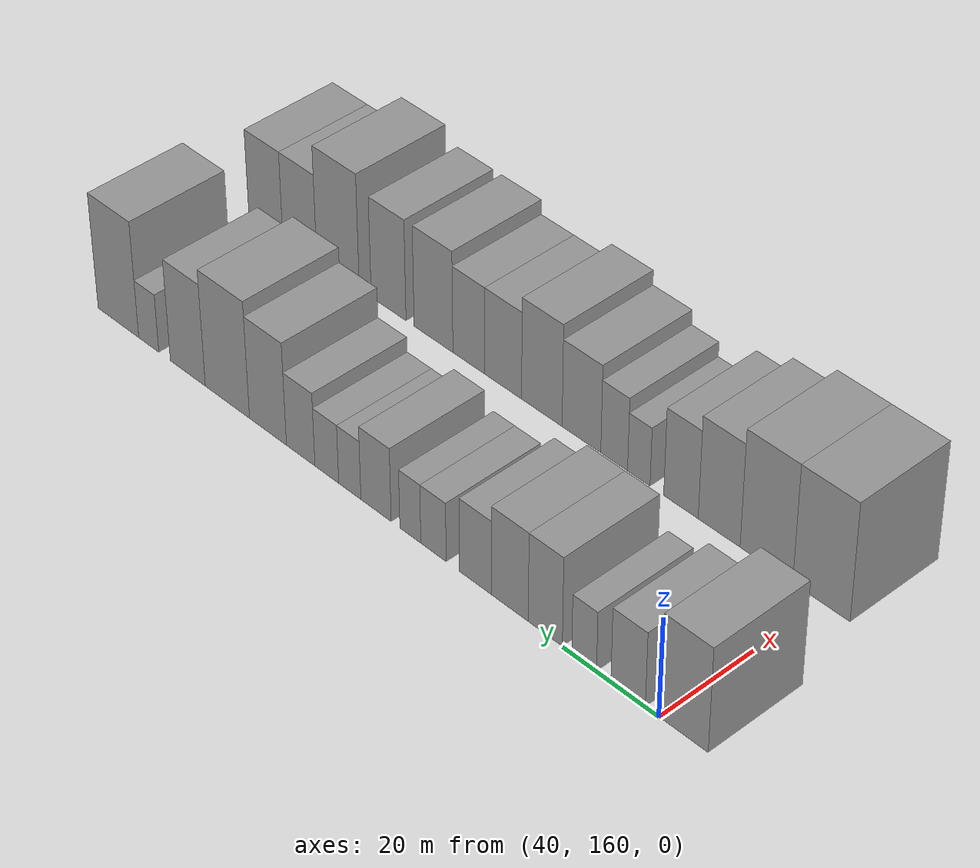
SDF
<sdf version="1.6">
 <world name="default">
  <model name="building_47">
   <static>1</static>
   <pose>50.0000 155.0491 0 0.000000 0.000000 0.000000</pose>
   <link name="link">
    <pose>0 0 10.50 0 0 0</pose>
    <collision name="collision"><geometry><box><size>20.0000 9.7350 21.0000</size></box></geometry></collision>
    <visual name="visual">
     <cast_shadows>0</cast_shadows>
     <geometry><box><size>20.0000 9.7350 21.0000</size></box></geometry>
     <material>
      <script>
       <uri>model://grey_wall/materials/scripts</uri>
       <uri>model://grey_wall/materials/textures</uri>
       <name>vrc/grey_wall</name>
      </script>
     </material>
    </visual>
   </link>
  </model>
  <model name="building_48">
   <static>1</static>
   <pose>50.0000 166.4824 0 0.000000 0.000000 0.000000</pose>
   <link name="link">
    <pose>0 0 7.50 0 0 0</pose>
    <collision name="collision"><geometry><box><size>20.0000 7.1317 15.0000</size></box></geometry></collision>
    <visual name="visual">
     <cast_shadows>0</cast_shadows>
     <geometry><box><size>20.0000 7.1317 15.0000</size></box></geometry>
     <material>
      <script>
       <uri>model://grey_wall/materials/scripts</uri>
       <uri>model://grey_wall/materials/textures</uri>
       <name>vrc/grey_wall</name>
      </script>
     </material>
    </visual>
   </link>
  </model>
  <model name="building_49">
   <static>1</static>
   <pose>50.0000 175.6616 0 0.000000 0.000000 0.000000</pose>
   <link name="link">
    <pose>0 0 6.00 0 0 0</pose>
    <collision name="collision"><geometry><box><size>20.0000 5.2266 12.0000</size></box></geometry></collision>
    <visual name="visual">
     <cast_shadows>0</cast_shadows>
     <geometry><box><size>20.0000 5.2266 12.0000</size></box></geometry>
     <material>
      <script>
       <uri>model://grey_wall/materials/scripts</uri>
       <uri>model://grey_wall/materials/textures</uri>
       <name>vrc/grey_wall</name>
      </script>
     </material>
    </visual>
   </link>
  </model>
  <model name="building_50">
   <static>1</static>
   <pose>50.0000 183.9300 0 0.000000 0.000000 0.000000</pose>
   <link name="link">
    <pose>0 0 9.00 0 0 0</pose>
    <collision name="collision"><geometry><box><size>20.0000 7.3103 18.0000</size></box></geometry></collision>
    <visual name="visual">
     <cast_shadows>0</cast_shadows>
     <geometry><box><size>20.0000 7.3103 18.0000</size></box></geometry>
     <material>
      <script>
       <uri>model://grey_wall/materials/scripts</uri>
       <uri>model://grey_wall/materials/textures</uri>
       <name>vrc/grey_wall</name>
      </script>
     </material>
    </visual>
   </link>
  </model>
  <model name="building_51">
   <static>1</static>
   <pose>50.0000 191.6336 0 0.000000 0.000000 0.000000</pose>
   <link name="link">
    <pose>0 0 9.00 0 0 0</pose>
    <collision name="collision"><geometry><box><size>20.0000 8.0969 18.0000</size></box></geometry></collision>
    <visual name="visual">
     <cast_shadows>0</cast_shadows>
     <geometry><box><size>20.0000 8.0969 18.0000</size></box></geometry>
     <material>
      <script>
       <uri>model://grey_wall/materials/scripts</uri>
       <uri>model://grey_wall/materials/textures</uri>
       <name>vrc/grey_wall</name>
      </script>
     </material>
    </visual>
   </link>
  </model>
  <model name="building_52">
   <static>1</static>
   <pose>50.0000 199.2062 0 0.000000 0.000000 0.000000</pose>
   <link name="link">
    <pose>0 0 7.50 0 0 0</pose>
    <collision name="collision"><geometry><box><size>20.0000 7.0482 15.0000</size></box></geometry></collision>
    <visual name="visual">
     <cast_shadows>0</cast_shadows>
     <geometry><box><size>20.0000 7.0482 15.0000</size></box></geometry>
     <material>
      <script>
       <uri>model://grey_wall/materials/scripts</uri>
       <uri>model://grey_wall/materials/textures</uri>
       <name>vrc/grey_wall</name>
      </script>
     </material>
    </visual>
   </link>
  </model>
  <model name="building_53">
   <static>1</static>
   <pose>50.0000 208.6064 0 0.000000 0.000000 0.000000</pose>
   <link name="link">
    <pose>0 0 6.00 0 0 0</pose>
    <collision name="collision"><geometry><box><size>20.0000 5.7521 12.0000</size></box></geometry></collision>
    <visual name="visual">
     <cast_shadows>0</cast_shadows>
     <geometry><box><size>20.0000 5.7521 12.0000</size></box></geometry>
     <material>
      <script>
       <uri>model://grey_wall/materials/scripts</uri>
       <uri>model://grey_wall/materials/textures</uri>
       <name>vrc/grey_wall</name>
      </script>
     </material>
    </visual>
   </link>
  </model>
  <model name="building_54">
   <static>1</static>
   <pose>50.0000 213.8848 0 0.000000 0.000000 0.000000</pose>
   <link name="link">
    <pose>0 0 6.00 0 0 0</pose>
    <collision name="collision"><geometry><box><size>20.0000 4.8046 12.0000</size></box></geometry></collision>
    <visual name="visual">
     <cast_shadows>0</cast_shadows>
     <geometry><box><size>20.0000 4.8046 12.0000</size></box></geometry>
     <material>
      <script>
       <uri>model://grey_wall/materials/scripts</uri>
       <uri>model://grey_wall/materials/textures</uri>
       <name>vrc/grey_wall</name>
      </script>
     </material>
    </visual>
   </link>
  </model>
  <model name="building_55">
   <static>1</static>
   <pose>50.0000 221.8105 0 0.000000 0.000000 0.000000</pose>
   <link name="link">
    <pose>0 0 7.50 0 0 0</pose>
    <collision name="collision"><geometry><box><size>20.0000 7.0468 15.0000</size></box></geometry></collision>
    <visual name="visual">
     <cast_shadows>0</cast_shadows>
     <geometry><box><size>20.0000 7.0468 15.0000</size></box></geometry>
     <material>
      <script>
       <uri>model://grey_wall/materials/scripts</uri>
       <uri>model://grey_wall/materials/textures</uri>
       <name>vrc/grey_wall</name>
      </script>
     </material>
    </visual>
   </link>
  </model>
  <model name="building_56">
   <static>1</static>
   <pose>50.0000 227.9521 0 0.000000 0.000000 0.000000</pose>
   <link name="link">
    <pose>0 0 6.00 0 0 0</pose>
    <collision name="collision"><geometry><box><size>20.0000 5.2365 12.0000</size></box></geometry></collision>
    <visual name="visual">
     <cast_shadows>0</cast_shadows>
     <geometry><box><size>20.0000 5.2365 12.0000</size></box></geometry>
     <material>
      <script>
       <uri>model://grey_wall/materials/scripts</uri>
       <uri>model://grey_wall/materials/textures</uri>
       <name>vrc/grey_wall</name>
      </script>
     </material>
    </visual>
   </link>
  </model>
  <model name="building_57">
   <static>1</static>
   <pose>50.0000 233.4096 0 0.000000 0.000000 0.000000</pose>
   <link name="link">
    <pose>0 0 6.00 0 0 0</pose>
    <collision name="collision"><geometry><box><size>20.0000 5.6783 12.0000</size></box></geometry></collision>
    <visual name="visual">
     <cast_shadows>0</cast_shadows>
     <geometry><box><size>20.0000 5.6783 12.0000</size></box></geometry>
     <material>
      <script>
       <uri>model://grey_wall/materials/scripts</uri>
       <uri>model://grey_wall/materials/textures</uri>
       <name>vrc/grey_wall</name>
      </script>
     </material>
    </visual>
   </link>
  </model>
  <model name="building_58">
   <static>1</static>
   <pose>50.0000 239.6895 0 0.000000 0.000000 0.000000</pose>
   <link name="link">
    <pose>0 0 7.50 0 0 0</pose>
    <collision name="collision"><geometry><box><size>20.0000 6.8815 15.0000</size></box></geometry></collision>
    <visual name="visual">
     <cast_shadows>0</cast_shadows>
     <geometry><box><size>20.0000 6.8815 15.0000</size></box></geometry>
     <material>
      <script>
       <uri>model://grey_wall/materials/scripts</uri>
       <uri>model://grey_wall/materials/textures</uri>
       <name>vrc/grey_wall</name>
      </script>
     </material>
    </visual>
   </link>
  </model>
  <model name="building_59">
   <static>1</static>
   <pose>50.0000 247.6630 0 0.000000 0.000000 0.000000</pose>
   <link name="link">
    <pose>0 0 10.50 0 0 0</pose>
    <collision name="collision"><geometry><box><size>20.0000 9.0654 21.0000</size></box></geometry></collision>
    <visual name="visual">
     <cast_shadows>0</cast_shadows>
     <geometry><box><size>20.0000 9.0654 21.0000</size></box></geometry>
     <material>
      <script>
       <uri>model://grey_wall/materials/scripts</uri>
       <uri>model://grey_wall/materials/textures</uri>
       <name>vrc/grey_wall</name>
      </script>
     </material>
    </visual>
   </link>
  </model>
  <model name="building_60">
   <static>1</static>
   <pose>50.0000 257.7361 0 0.000000 0.000000 0.000000</pose>
   <link name="link">
    <pose>0 0 12.00 0 0 0</pose>
    <collision name="collision"><geometry><box><size>20.0000 11.0808 24.0000</size></box></geometry></collision>
    <visual name="visual">
     <cast_shadows>0</cast_shadows>
     <geometry><box><size>20.0000 11.0808 24.0000</size></box></geometry>
     <material>
      <script>
       <uri>model://grey_wall/materials/scripts</uri>
       <uri>model://grey_wall/materials/textures</uri>
       <name>vrc/grey_wall</name>
      </script>
     </material>
    </visual>
   </link>
  </model>
  <model name="building_61">
   <static>1</static>
   <pose>50.0000 267.7420 0 0.000000 0.000000 0.000000</pose>
   <link name="link">
    <pose>0 0 10.50 0 0 0</pose>
    <collision name="collision"><geometry><box><size>20.0000 8.9310 21.0000</size></box></geometry></collision>
    <visual name="visual">
     <cast_shadows>0</cast_shadows>
     <geometry><box><size>20.0000 8.9310 21.0000</size></box></geometry>
     <material>
      <script>
       <uri>model://grey_wall/materials/scripts</uri>
       <uri>model://grey_wall/materials/textures</uri>
       <name>vrc/grey_wall</name>
      </script>
     </material>
    </visual>
   </link>
  </model>
  <model name="building_62">
   <static>1</static>
   <pose>50.0000 277.8207 0 0.000000 0.000000 0.000000</pose>
   <link name="link">
    <pose>0 0 6.00 0 0 0</pose>
    <collision name="collision"><geometry><box><size>20.0000 5.2265 12.0000</size></box></geometry></collision>
    <visual name="visual">
     <cast_shadows>0</cast_shadows>
     <geometry><box><size>20.0000 5.2265 12.0000</size></box></geometry>
     <material>
      <script>
       <uri>model://grey_wall/materials/scripts</uri>
       <uri>model://grey_wall/materials/textures</uri>
       <name>vrc/grey_wall</name>
      </script>
     </material>
    </visual>
   </link>
  </model>
  <model name="building_63">
   <static>1</static>
   <pose>50.0000 285.7906 0 0.000000 0.000000 0.000000</pose>
   <link name="link">
    <pose>0 0 12.00 0 0 0</pose>
    <collision name="collision"><geometry><box><size>20.0000 10.7135 24.0000</size></box></geometry></collision>
    <visual name="visual">
     <cast_shadows>0</cast_shadows>
     <geometry><box><size>20.0000 10.7135 24.0000</size></box></geometry>
     <material>
      <script>
       <uri>model://grey_wall/materials/scripts</uri>
       <uri>model://grey_wall/materials/textures</uri>
       <name>vrc/grey_wall</name>
      </script>
     </material>
    </visual>
   </link>
  </model>
  <model name="building_111">
   <static>1</static>
   <pose>85.0000 160.1417 0 0.000000 0.000000 0.000000</pose>
   <link name="link">
    <pose>0 0 12.00 0 0 0</pose>
    <collision name="collision"><geometry><box><size>20.0000 11.7038 24.0000</size></box></geometry></collision>
    <visual name="visual">
     <cast_shadows>0</cast_shadows>
     <geometry><box><size>20.0000 11.7038 24.0000</size></box></geometry>
     <material>
      <script>
       <uri>model://grey_wall/materials/scripts</uri>
       <uri>model://grey_wall/materials/textures</uri>
       <name>vrc/grey_wall</name>
      </script>
     </material>
    </visual>
   </link>
  </model>
  <model name="building_112">
   <static>1</static>
   <pose>85.0000 171.5057 0 0.000000 0.000000 0.000000</pose>
   <link name="link">
    <pose>0 0 12.00 0 0 0</pose>
    <collision name="collision"><geometry><box><size>20.0000 11.0243 24.0000</size></box></geometry></collision>
    <visual name="visual">
     <cast_shadows>0</cast_shadows>
     <geometry><box><size>20.0000 11.0243 24.0000</size></box></geometry>
     <material>
      <script>
       <uri>model://grey_wall/materials/scripts</uri>
       <uri>model://grey_wall/materials/textures</uri>
       <name>vrc/grey_wall</name>
      </script>
     </material>
    </visual>
   </link>
  </model>
  <model name="building_113">
   <static>1</static>
   <pose>85.0000 181.4873 0 0.000000 0.000000 0.000000</pose>
   <link name="link">
    <pose>0 0 10.50 0 0 0</pose>
    <collision name="collision"><geometry><box><size>20.0000 8.9388 21.0000</size></box></geometry></collision>
    <visual name="visual">
     <cast_shadows>0</cast_shadows>
     <geometry><box><size>20.0000 8.9388 21.0000</size></box></geometry>
     <material>
      <script>
       <uri>model://grey_wall/materials/scripts</uri>
       <uri>model://grey_wall/materials/textures</uri>
       <name>vrc/grey_wall</name>
      </script>
     </material>
    </visual>
   </link>
  </model>
  <model name="building_114">
   <static>1</static>
   <pose>85.0000 189.7023 0 0.000000 0.000000 0.000000</pose>
   <link name="link">
    <pose>0 0 9.00 0 0 0</pose>
    <collision name="collision"><geometry><box><size>20.0000 7.4912 18.0000</size></box></geometry></collision>
    <visual name="visual">
     <cast_shadows>0</cast_shadows>
     <geometry><box><size>20.0000 7.4912 18.0000</size></box></geometry>
     <material>
      <script>
       <uri>model://grey_wall/materials/scripts</uri>
       <uri>model://grey_wall/materials/textures</uri>
       <name>vrc/grey_wall</name>
      </script>
     </material>
    </visual>
   </link>
  </model>
  <model name="building_115">
   <static>1</static>
   <pose>85.0000 198.9327 0 0.000000 0.000000 0.000000</pose>
   <link name="link">
    <pose>0 0 6.00 0 0 0</pose>
    <collision name="collision"><geometry><box><size>20.0000 4.9696 12.0000</size></box></geometry></collision>
    <visual name="visual">
     <cast_shadows>0</cast_shadows>
     <geometry><box><size>20.0000 4.9696 12.0000</size></box></geometry>
     <material>
      <script>
       <uri>model://grey_wall/materials/scripts</uri>
       <uri>model://grey_wall/materials/textures</uri>
       <name>vrc/grey_wall</name>
      </script>
     </material>
    </visual>
   </link>
  </model>
  <model name="building_116">
   <static>1</static>
   <pose>85.0000 204.4200 0 0.000000 0.000000 0.000000</pose>
   <link name="link">
    <pose>0 0 7.50 0 0 0</pose>
    <collision name="collision"><geometry><box><size>20.0000 6.0049 15.0000</size></box></geometry></collision>
    <visual name="visual">
     <cast_shadows>0</cast_shadows>
     <geometry><box><size>20.0000 6.0049 15.0000</size></box></geometry>
     <material>
      <script>
       <uri>model://grey_wall/materials/scripts</uri>
       <uri>model://grey_wall/materials/textures</uri>
       <name>vrc/grey_wall</name>
      </script>
     </material>
    </visual>
   </link>
  </model>
  <model name="building_117">
   <static>1</static>
   <pose>85.0000 211.8101 0 0.000000 0.000000 0.000000</pose>
   <link name="link">
    <pose>0 0 9.00 0 0 0</pose>
    <collision name="collision"><geometry><box><size>20.0000 8.7754 18.0000</size></box></geometry></collision>
    <visual name="visual">
     <cast_shadows>0</cast_shadows>
     <geometry><box><size>20.0000 8.7754 18.0000</size></box></geometry>
     <material>
      <script>
       <uri>model://grey_wall/materials/scripts</uri>
       <uri>model://grey_wall/materials/textures</uri>
       <name>vrc/grey_wall</name>
      </script>
     </material>
    </visual>
   </link>
  </model>
  <model name="building_118">
   <static>1</static>
   <pose>85.0000 220.8830 0 0.000000 0.000000 0.000000</pose>
   <link name="link">
    <pose>0 0 10.50 0 0 0</pose>
    <collision name="collision"><geometry><box><size>20.0000 9.3704 21.0000</size></box></geometry></collision>
    <visual name="visual">
     <cast_shadows>0</cast_shadows>
     <geometry><box><size>20.0000 9.3704 21.0000</size></box></geometry>
     <material>
      <script>
       <uri>model://grey_wall/materials/scripts</uri>
       <uri>model://grey_wall/materials/textures</uri>
       <name>vrc/grey_wall</name>
      </script>
     </material>
    </visual>
   </link>
  </model>
  <model name="building_119">
   <static>1</static>
   <pose>85.0000 229.9012 0 0.000000 0.000000 0.000000</pose>
   <link name="link">
    <pose>0 0 9.00 0 0 0</pose>
    <collision name="collision"><geometry><box><size>20.0000 8.6658 18.0000</size></box></geometry></collision>
    <visual name="visual">
     <cast_shadows>0</cast_shadows>
     <geometry><box><size>20.0000 8.6658 18.0000</size></box></geometry>
     <material>
      <script>
       <uri>model://grey_wall/materials/scripts</uri>
       <uri>model://grey_wall/materials/textures</uri>
       <name>vrc/grey_wall</name>
      </script>
     </material>
    </visual>
   </link>
  </model>
  <model name="building_120">
   <static>1</static>
   <pose>85.0000 238.0571 0 0.000000 0.000000 0.000000</pose>
   <link name="link">
    <pose>0 0 9.00 0 0 0</pose>
    <collision name="collision"><geometry><box><size>20.0000 7.6460 18.0000</size></box></geometry></collision>
    <visual name="visual">
     <cast_shadows>0</cast_shadows>
     <geometry><box><size>20.0000 7.6460 18.0000</size></box></geometry>
     <material>
      <script>
       <uri>model://grey_wall/materials/scripts</uri>
       <uri>model://grey_wall/materials/textures</uri>
       <name>vrc/grey_wall</name>
      </script>
     </material>
    </visual>
   </link>
  </model>
  <model name="building_121">
   <static>1</static>
   <pose>85.0000 246.6007 0 0.000000 0.000000 0.000000</pose>
   <link name="link">
    <pose>0 0 10.50 0 0 0</pose>
    <collision name="collision"><geometry><box><size>20.0000 9.4413 21.0000</size></box></geometry></collision>
    <visual name="visual">
     <cast_shadows>0</cast_shadows>
     <geometry><box><size>20.0000 9.4413 21.0000</size></box></geometry>
     <material>
      <script>
       <uri>model://grey_wall/materials/scripts</uri>
       <uri>model://grey_wall/materials/textures</uri>
       <name>vrc/grey_wall</name>
      </script>
     </material>
    </visual>
   </link>
  </model>
  <model name="building_122">
   <static>1</static>
   <pose>85.0000 257.6522 0 0.000000 0.000000 0.000000</pose>
   <link name="link">
    <pose>0 0 10.50 0 0 0</pose>
    <collision name="collision"><geometry><box><size>20.0000 8.6618 21.0000</size></box></geometry></collision>
    <visual name="visual">
     <cast_shadows>0</cast_shadows>
     <geometry><box><size>20.0000 8.6618 21.0000</size></box></geometry>
     <material>
      <script>
       <uri>model://grey_wall/materials/scripts</uri>
       <uri>model://grey_wall/materials/textures</uri>
       <name>vrc/grey_wall</name>
      </script>
     </material>
    </visual>
   </link>
  </model>
  <model name="building_123">
   <static>1</static>
   <pose>85.0000 270.4087 0 0.000000 0.000000 0.000000</pose>
   <link name="link">
    <pose>0 0 12.00 0 0 0</pose>
    <collision name="collision"><geometry><box><size>20.0000 10.8512 24.0000</size></box></geometry></collision>
    <visual name="visual">
     <cast_shadows>0</cast_shadows>
     <geometry><box><size>20.0000 10.8512 24.0000</size></box></geometry>
     <material>
      <script>
       <uri>model://grey_wall/materials/scripts</uri>
       <uri>model://grey_wall/materials/textures</uri>
       <name>vrc/grey_wall</name>
      </script>
     </material>
    </visual>
   </link>
  </model>
  <model name="building_124">
   <static>1</static>
   <pose>85.0000 280.2549 0 0.000000 0.000000 0.000000</pose>
   <link name="link">
    <pose>0 0 9.00 0 0 0</pose>
    <collision name="collision"><geometry><box><size>20.0000 8.8411 18.0000</size></box></geometry></collision>
    <visual name="visual">
     <cast_shadows>0</cast_shadows>
     <geometry><box><size>20.0000 8.8411 18.0000</size></box></geometry>
     <material>
      <script>
       <uri>model://grey_wall/materials/scripts</uri>
       <uri>model://grey_wall/materials/textures</uri>
       <name>vrc/grey_wall</name>
      </script>
     </material>
    </visual>
   </link>
  </model>
  <model name="building_125">
   <static>1</static>
   <pose>85.0000 289.1459 0 0.000000 0.000000 0.000000</pose>
   <link name="link">
    <pose>0 0 9.00 0 0 0</pose>
    <collision name="collision"><geometry><box><size>20.0000 8.9410 18.0000</size></box></geometry></collision>
    <visual name="visual">
     <cast_shadows>0</cast_shadows>
     <geometry><box><size>20.0000 8.9410 18.0000</size></box></geometry>
     <material>
      <script>
       <uri>model://grey_wall/materials/scripts</uri>
       <uri>model://grey_wall/materials/textures</uri>
       <name>vrc/grey_wall</name>
      </script>
     </material>
    </visual>
   </link>
  </model>
 </world>
</sdf>
